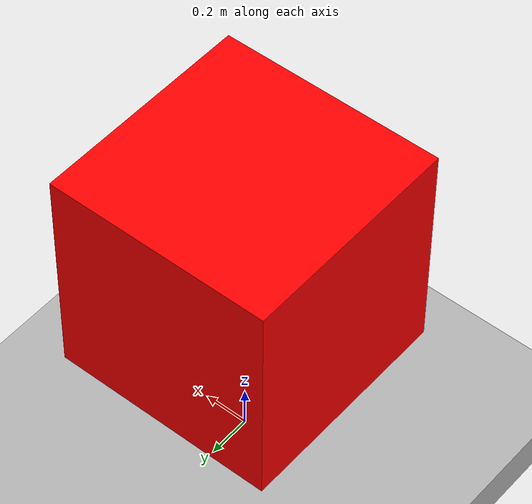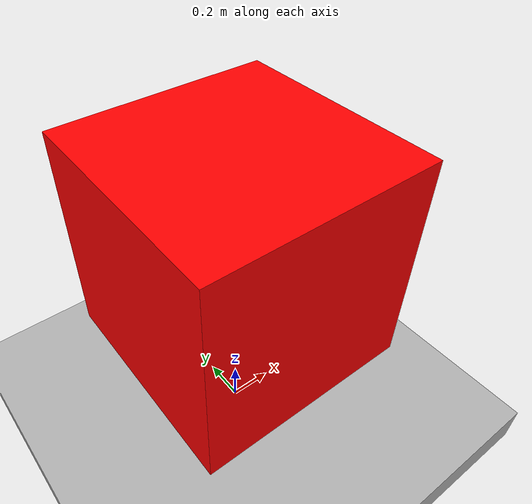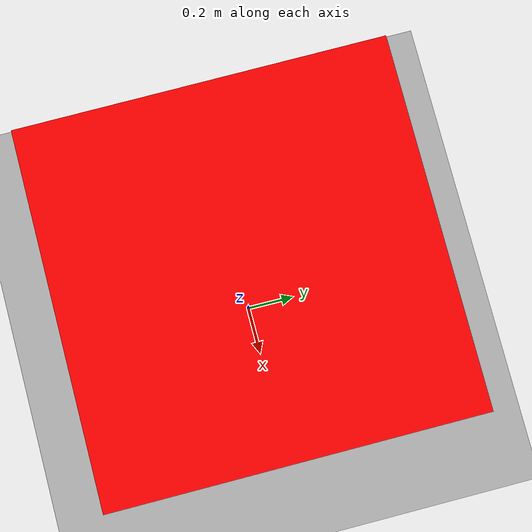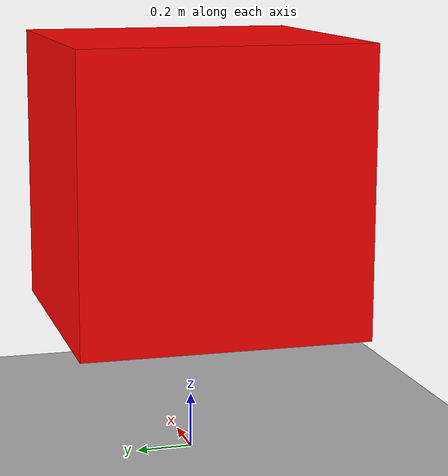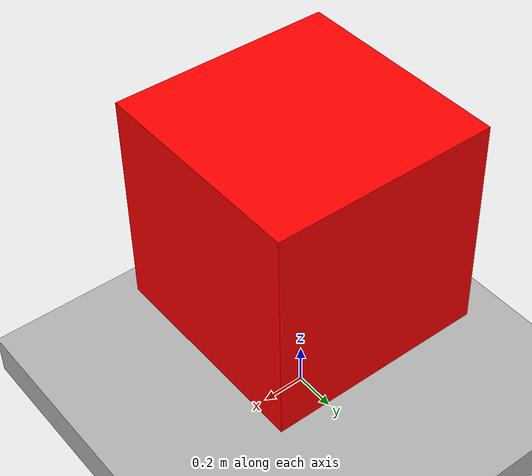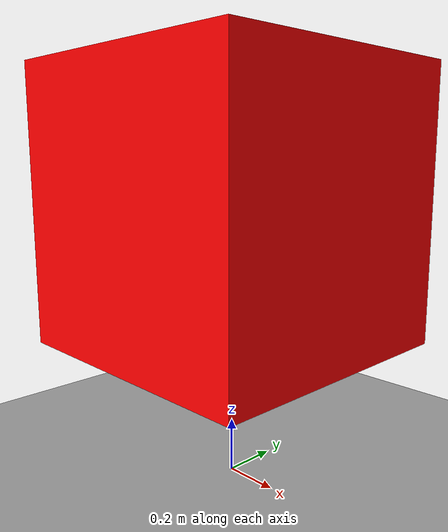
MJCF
<mujoco>
  <option gravity="0 0 -9.81" />
  <worldbody>
    <body name="object_2" pos="0 0 0">
      <geom type="box" size="5 5 0.1" rgba="0.7 0.7 0.7 1" friction="0.5 0.5 0.5" />
    </body>
    <body name="object_1" pos="0 0 1">
      <geom type="box" size="0.5 0.5 0.5" density="1" rgba="1 0 0 1" />
    </body>
    <body name="object_3" pos="0 0 -5">
      <geom type="plane" size="30 30 0.1" rgba="0.7 0.7 0.7 1" friction="1 1 1" />
    </body>
  </worldbody>
</mujoco>
